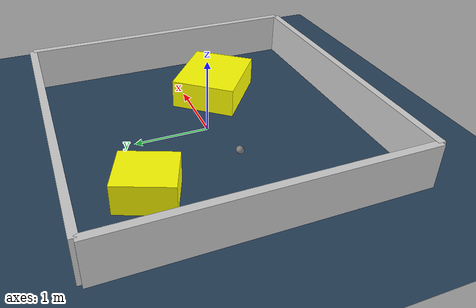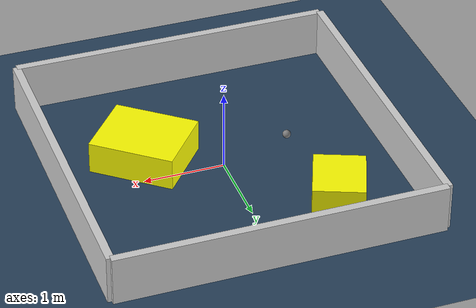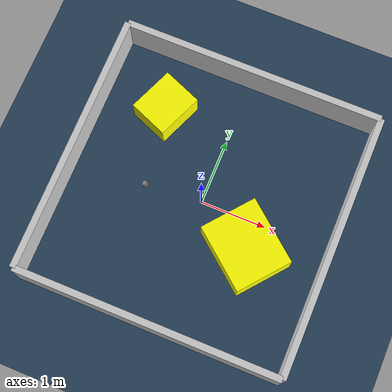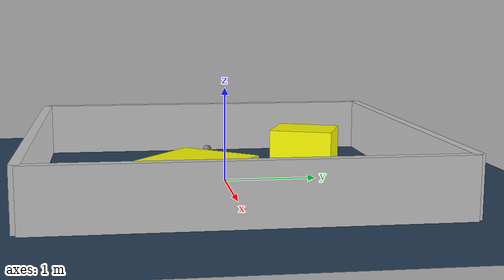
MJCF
<?xml version="1.0" ?>
<mujoco model="generated_environment">
  <option timestep="0.01" integrator="RK4" cone="elliptic"/>
  <default>
    <geom density="1"/>
  </default>
  <asset>
    <texture builtin="gradient" height="3072" rgb1="0.3 0.5 0.7" rgb2="0 0 0" type="skybox" width="512"/>
    <texture builtin="checker" height="300" mark="edge" markrgb="0.8 0.8 0.8" name="groundplane" rgb1="0.2 0.3 0.4" rgb2="0.1 0.2 0.3" type="2d" width="300"/>
    <material name="groundplane" reflectance="0.2" texrepeat="5 5" texture="groundplane" texuniform="true"/>
    <material name="robot" rgba="0.0 1.0 0.0 1"/>
  </asset>
  <worldbody>
    <light dir="0 0 -1" directional="true" pos="0 0 1.5"/>
    <geom condim="4" friction="1.0 0.005 0.001" material="groundplane" name="floor" size="0 0 0.05" type="plane"/>
    <body name="walls">
      <geom name="wall_1" condim="4" pos="-2.0 0.0 0.3" rgba="0.800000011920929 0.800000011920929 0.800000011920929 1.0" size="0.05 2.0 0.3" type="box"/>
      <geom name="wall_2" condim="4" pos="2.0 0.0 0.3" rgba="0.800000011920929 0.800000011920929 0.800000011920929 1.0" size="0.05 2.0 0.3" type="box"/>
      <geom name="wall_3" condim="4" pos="0.0 -2.0 0.3" rgba="0.800000011920929 0.800000011920929 0.800000011920929 1.0" size="2.0 0.05 0.3" type="box"/>
      <geom name="wall_4" condim="4" pos="0.0 2.0 0.3" rgba="0.800000011920929 0.800000011920929 0.800000011920929 1.0" size="2.0 0.05 0.3" type="box"/>
    </body>
    <body name="robot">
      <joint name="joint_x" type="slide" pos="0 0 0" axis="1 0 0"/>
      <joint name="joint_y" type="slide" pos="0 0 0" axis="0 1 0"/>
      <geom name="robot" type="sphere" pos="-0.8380117478977748 -0.10095320032508437 0.2" size="0.05" mass="5." friction="1.0 0.005 0.0001" condim="4"/>
      <site name="sensor_ball"/>
    </body>
    <body name="obstacle_1_movable">
      <geom name="obstacle_1_movable" condim="4" pos="-1.0311864240494217 1.1084086438881882 0.2" euler="0 0 157.85722864287234" friction="1.0 0.005 0.001" rgba="1 1 0 1" size="0.31184007438018513 0.36450921621938964 0.2" type="box" mass="0.1"/>
      <joint type="free"/>
    </body>
    <body name="obstacle_2_movable">
      <geom name="obstacle_2_movable" condim="4" pos="0.8607903804481063 -0.4238332857599285 0.2" euler="0 0 320.92867065926345" friction="1.0 0.005 0.001" rgba="1 1 0 1" size="0.5292252296577382 0.44276732701368315 0.2" type="box" mass="0.1"/>
      <joint type="free"/>
    </body>
  </worldbody>
  <actuator>
    <motor name="actuator_x" joint="joint_x" gear="1" ctrlrange="-1 1"/>
    <motor name="actuator_y" joint="joint_y" gear="1" ctrlrange="-1 1"/>
  </actuator>
</mujoco>
